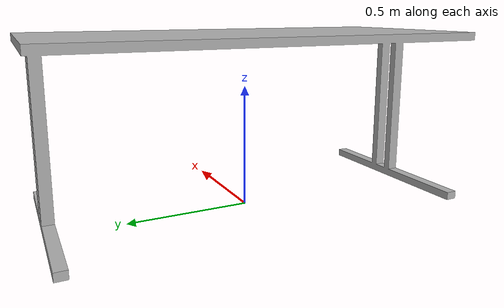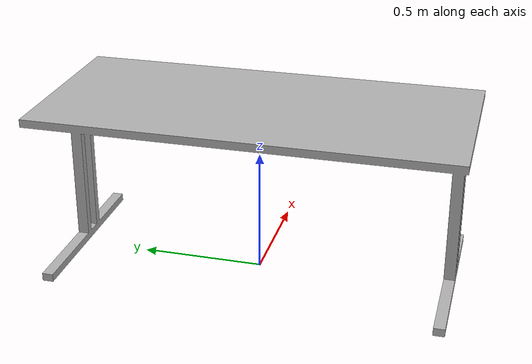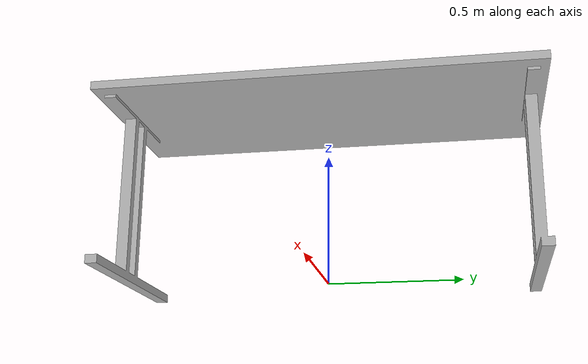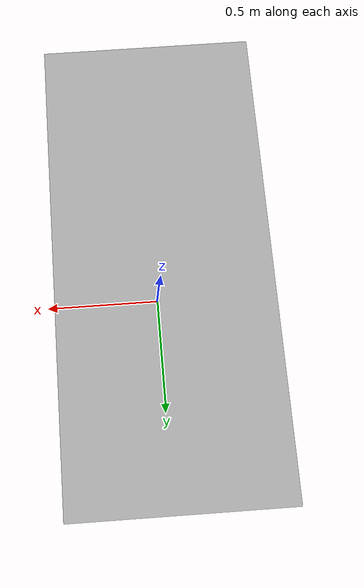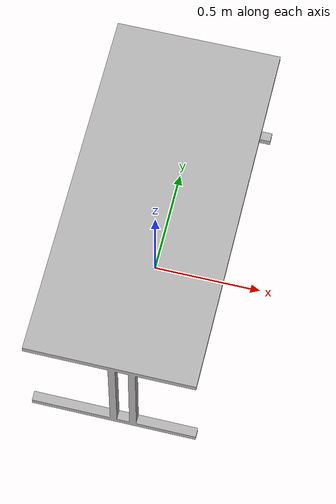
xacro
<?xml version="1.0"?>
<robot name="table" xmlns:xacro="http://www.ros.org/wiki/xacro">

  <xacro:include filename="$(find world_model_data)/data/models/xacro/common.xacro"/>

  <xacro:macro name="table" params="name *origin">

    <link name="${name}-base">
      <visual>
        <origin rpy="0 0 0" xyz="0 0 0"/>
        <geometry>
	  <mesh filename="file://$(find world_model_data)/data/models/meshes/ycb-meshes/table.stl"/>
        </geometry>
        <material name="white">
          <color rgba="0.7 0.7 0.7 1.0"/>
        </material>
      </visual>
    <collision>
      <origin rpy="0 0 0" xyz="0 0 0"/>
      <geometry>
	<mesh filename="file://$(find world_model_data)/data/models/meshes/ycb-meshes/table_ch.stl"/>
      </geometry>
    </collision>
    <inertial>
      <origin rpy="0 0 0" xyz="0.000000 0.000000 0.000000"/>
      <mass value="35.336455"/>
      <inertia ixx="1.849155" ixy="-0.000354" ixz="-0.154188" iyy="1.662671" iyz="0.003292" izz="0.802239"/>
    </inertial>
    </link>

  </xacro:macro>

  <xacro:arg name="name" default="table1"/>
  <xacro:arg name="xyz" default="0 0 0"/>
  <xacro:arg name="rpy" default="0 0 0"/>

  <xacro:table name="$(arg name)" >
      <origin xyz="$(arg xyz)" rpy="$(arg rpy)" />
  </xacro:table>

</robot>
